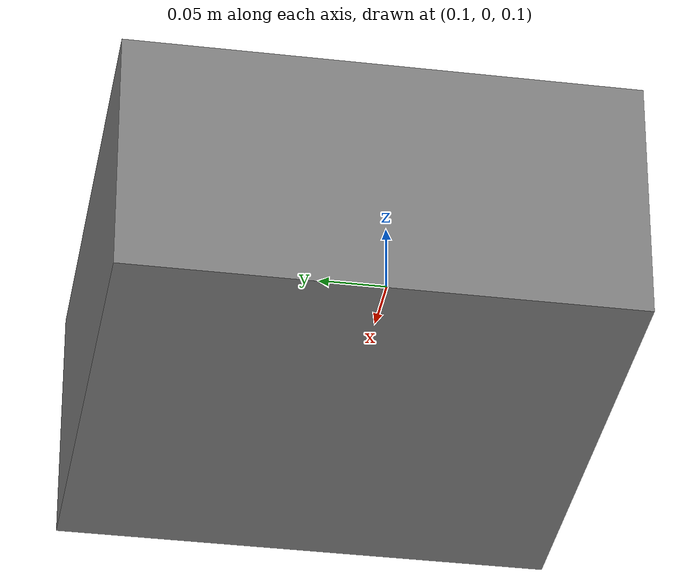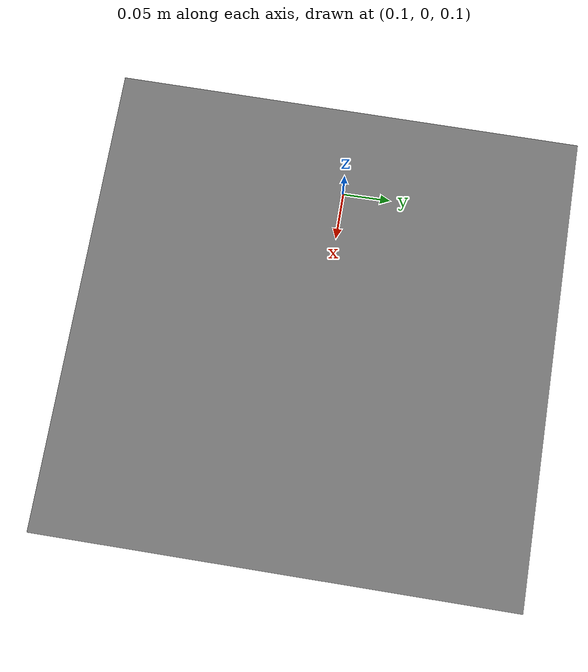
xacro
<?xml version="1.0"?>
<robot name="plate" xmlns:xacro="http://www.ros.org/wiki/xacro">

  <link name="plate">
    <visual>
      <origin xyz="0.3 0.0 0.2" rpy="0 0 0"/>
      <geometry>
        <box size="0.4 0.4 0.2"/>
      </geometry>
      <material name="grey">
        <color rgba="0.5 0.5 0.5 1.0"/>
      </material>
    </visual>
  </link>

</robot>
